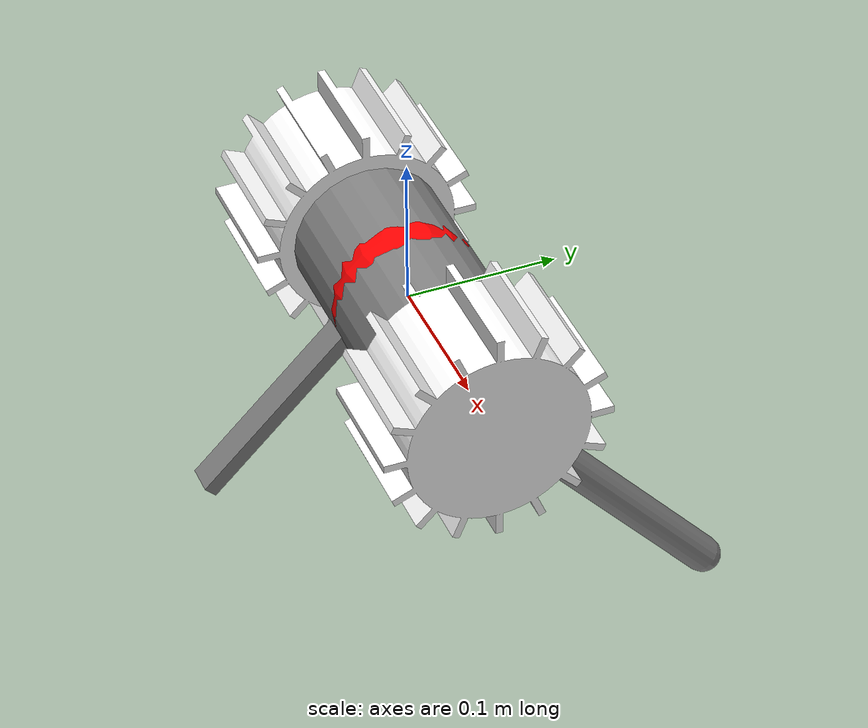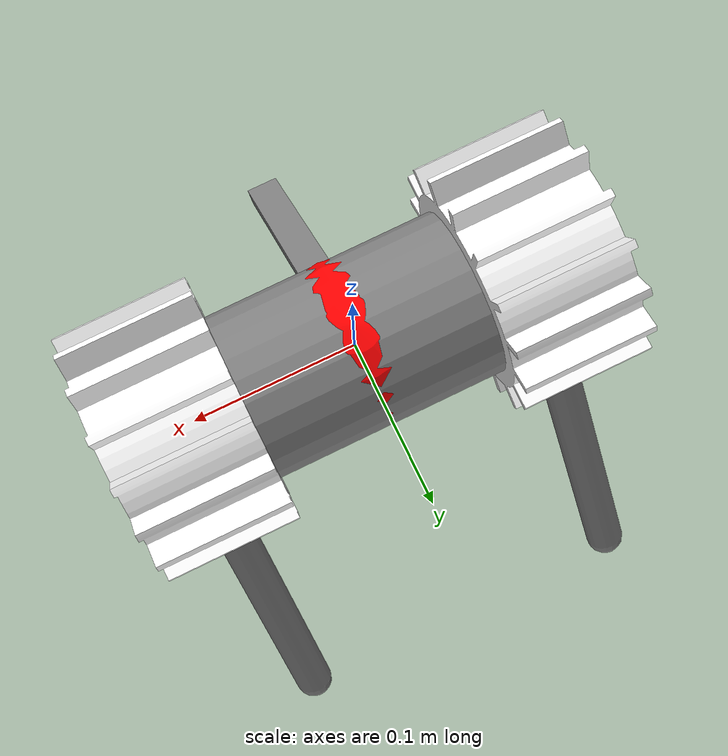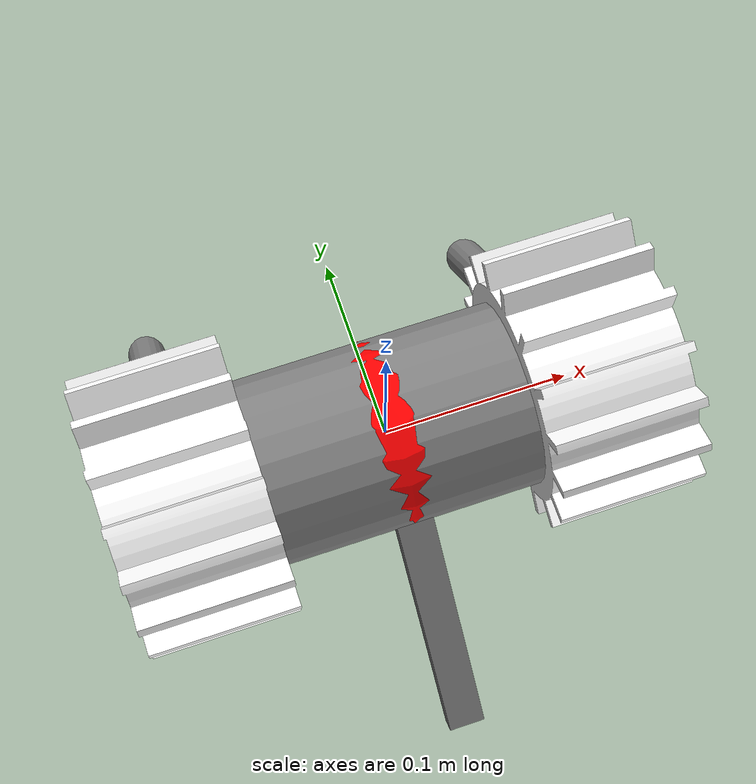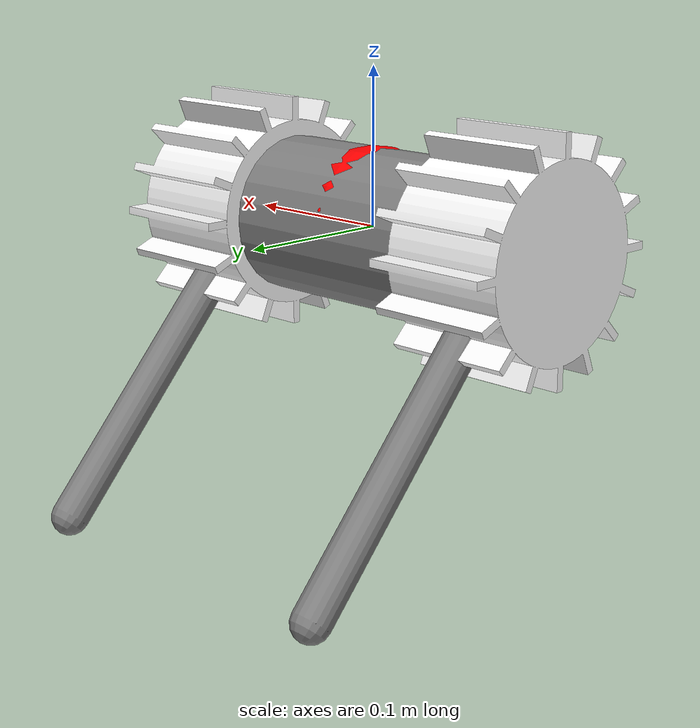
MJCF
<mujoco model="2wheel_arm_slider">
  <compiler angle="radian"/>

  <asset>
    <mesh name="wheel" file="mesh/wheel.stl" scale="0.001 0.001 0.001" inertia="exact" refquat="1 0 0 0"/>
  </asset>

  <worldbody>
    <body name="2wheel_arm">
      <joint name="body_free_joint" type="free" damping="1"/>

      <body name="main_body">
        <!-- same cylinder as 2wheel_rover's main_body_geom (radius 0.05), but 1.5x the width: half-length 0.065*1.5=0.0975 -->
        <geom name="main_body_geom" group="2" type="cylinder" fromto="0.0975 0 0 -0.0975 0 0" size="0.05" mass="0.5"/>
      </body>

      <site name="marker" pos="0 -0.0005 0.001" size="0.05" type="sphere" rgba="1 0 0 1"/>
      <site name="IMU" pos="0 0 0" size="0.01" rgba="1 0 1 1"/>
      <site name="GYRO" pos="0 0 0" size="0.01" rgba="0 1 1 1"/>
      <site name="VELOCITY" pos="0 0 0" size="0.01" rgba="0 1 1 1"/>

      <body name="r_arm" pos="0.11 0 0">
        <geom name="r_arm_geom" group="2" type="capsule" fromto="0 0 0 0 0.16 -0.18" size="0.012" mass="0.1"/>
        <body name="r_wheel" pos="0 0 0">
          <joint name="r_arm_joint" type="slide" axis="0 0.16 -0.18" limited="true" range="0 0.2408319" damping="0.3" frictionloss="0.01"/>
          <joint name="r_wheel_joint" type="hinge" axis="-1 0 0" damping="0.3" frictionloss="0.01"/>
          <geom name="r_wheel_geom" group="2" type="mesh" mesh="wheel" mass="0.25" pos="-0.04 0 0" rgba="1 1 1 1" friction="1 0.1 0.1"/>
        </body>
      </body>

      <body name="l_arm" pos="-0.11 0 0">
        <geom name="l_arm_geom" group="2" type="capsule" fromto="0 0 0 0 0.16 -0.18" size="0.012" mass="0.1"/>
        <body name="l_wheel" pos="0 0 0">
          <joint name="l_arm_joint" type="slide" axis="0 0.16 -0.18" limited="true" range="0 0.2408319" damping="0.3" frictionloss="0.01"/>
          <joint name="l_wheel_joint" type="hinge" axis="-1 0 0" damping="0.3" frictionloss="0.01"/>
          <geom name="l_wheel_geom" group="2" type="mesh" mesh="wheel" mass="0.25" pos="-0.04 0 0" rgba="1 1 1 1" friction="1 0.1 0.1"/>
        </body>
      </body>

      <!-- trailing skid: still only left/right ground contacts (wheels are colinear along x), so pitch stabilization is needed just like 2wheel_rover -->
      <geom name="stabilizer" group="2" type="box" size="0.01 0.07 0.005" pos="0 -0.09 -0.06" euler="0.7853981634 0 0" mass="0.2"/>
    </body>
  </worldbody>

  <actuator>
    <intvelocity name="r_motor" joint="r_wheel_joint" gear="1" kp="1" actrange="-inf inf" ctrllimited="true" ctrlrange="-5.2359877 5.2359877" forcelimited="true" forcerange="-2.94 2.94"/>
    <intvelocity name="l_motor" joint="l_wheel_joint" gear="1" kp="1" actrange="-inf inf" ctrllimited="true" ctrlrange="-5.2359877 5.2359877" forcelimited="true" forcerange="-2.94 2.94"/>
    <position name="r_arm_motor" joint="r_arm_joint" gear="4.1522738" kp="100" kv="3.48" timeconst="0.5" ctrllimited="true" ctrlrange="0 1" forcelimited="true" forcerange="-30 30"/>
    <position name="l_arm_motor" joint="l_arm_joint" gear="4.1522738" kp="100" kv="3.48" timeconst="0.5" ctrllimited="true" ctrlrange="0 1" forcelimited="true" forcerange="-30 30"/>
  </actuator>

  <sensor>
    <accelerometer name="accelerometer" site="IMU"/>
    <gyro name="gyro" site="GYRO"/>
    <velocimeter name="velocimeter" site="VELOCITY"/>
  </sensor>
</mujoco>
